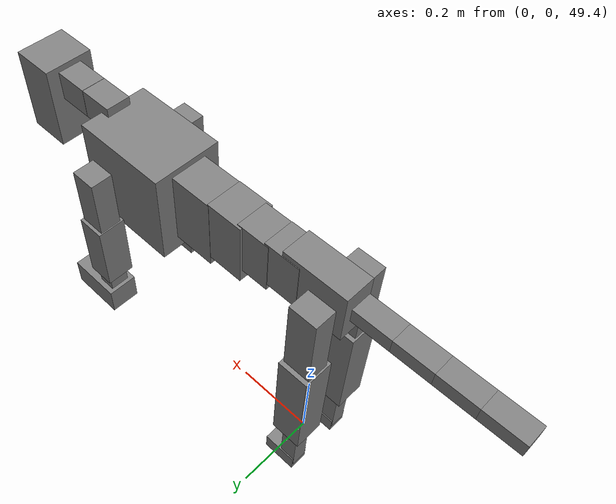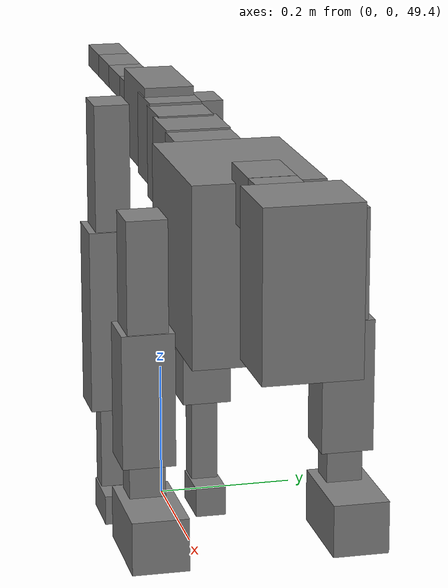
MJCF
<mujoco model="dog">

    <default>
        <joint armature="0.02" stiffness="1" damping="0.2" limited="true"/>
        <geom condim="3" friction="1 0.05 0.05" margin="0.01"/>
        <motor ctrllimited="true" ctrlrange="-1.0 1.0" forcelimited="true" gear="50"/>
    </default>

    <compiler inertiafromgeom="true" angle="radian"/>

    <option timestep="0.016" iterations="50" tolerance="1e-10" solver="Newton" jacobian="dense" cone="pyramidal"/>

    <size nconmax="20000" njmax="60000" nstack="5000000"/>
    <visual>
        <map force="0.1" zfar="30"/>
        <rgba haze="0.15 0.25 0.35 1"/>
        <quality shadowsize="2048"/>
        <global offwidth="800" offheight="800"/>
    </visual>

    <asset>
        <texture type="skybox" builtin="gradient" rgb1="0.3 0.5 0.7" rgb2="0 0 0" width="512" height="512"/>
        <texture name="texplane" type="2d" builtin="checker" rgb1=".2 .3 .4" rgb2=".1 0.15 0.2" width="512" height="512"
                 mark="cross" markrgb=".8 .8 .8"/>
        <texture name="texgeom" type="cube" builtin="flat" mark="cross" width="127" height="1278" rgb1="0.8 0.6 0.4"
                 rgb2="0.8 0.6 0.4" markrgb="1 1 1" random="0.01"/>

        <material name="matplane" reflectance="0.3" texture="texplane" texrepeat="1 1" texuniform="true"/>
        <material name="matgeom" texture="texgeom" texuniform="true" rgba="0.8 0.6 .4 1"/>
    </asset>

    <worldbody>
        <geom name="floor" pos="0 0 0" size="0 0 .25" type="plane" material="matplane" condim="3"/>

        <light directional="false" diffuse=".2 .2 .2" specular="0 0 0" pos="0 0 5" dir="0 0 -1" castshadow="false"/>
        <light mode="targetbodycom" target="torso" directional="false" diffuse=".8 .8 .8" specular="0.3 0.3 0.3"
               pos="0 0 4.0" dir="0 0 -1"/>

        <body name="root" pos="0 0 50">
            <freejoint name="root_1"/>
            <geom type="box" pos="0 0 -0.02" size="0.0774  0.0358  0.063" density="2030"/>

            <body name="spine1" pos="0.054 0 0">
                <joint name="spine1_y" axis="0 1 0" range="0 0.7" limited="true"/>
                <geom type="box" pos="0.02375 0 -0.03" size="0.04375  0.0375  0.05985" density="2030"/>

                <body name="spine2" pos="0.0612 0 0">
                    <joint name="spine2_y" axis="0 1 0" range="-0.15 0.15" limited="true"/>
                    <geom type="box" pos="0.03555  0  -0.04" size="0.04055  0.039  0.06615" density="2030"/>

                    <body name="spine3" pos="0.0730 0 0">
                        <joint name="spine3_y" axis="0 1 0" range="-0.15 0.15" limited="true"/>
                        <geom type="box" pos="0.03555  0  -0.057" size="0.04555  0.0445  0.081" density="2030"/>

                        <body name="spine4" pos="0.0780 0 0">
                            <joint name="spine4_y" axis="0 1 0" range="-0.15 0.15" limited="true"/>
                            <geom type="box" pos="0.05265  0  -0.07" size="0.05265  0.045  0.09135" density="2030"/>

                            <body name="torso" pos="0.1082 0 0">
                                <joint name="torso_y" axis="0 1 0" range="-0.15 0.15" limited="true"/>
                                <geom type="box" pos="0.11925  0  -0.085" size="0.11925  0.085  0.11745"
                                      density="2030"/>

                                <body name="neck1" pos="0.2160  0   0.0180">
                                    <joint name="neck1_y" axis="0 1 0" range="-1.2  -1" limited="true"/>
                                    <geom type="box" pos="0.0423  0  0" size="0.0423  0.03  0.036" density="2325"/>

                                    <body name="neck2" pos="0.0853  0  0">
                                        <joint name="neck2_y" axis="0 1 0" range="0.1  0" limited="true"/>
                                        <geom type="box" pos="0.0423  0  0" size="0.0423  0.03  0.036" density="2325"/>

                                        <body name="head" pos="0.0853  0  0">
                                            <joint name="head_y" axis="0 1 0" range="-0.3  -0.2" limited="true"/>
                                            <geom type="box" pos="0.0531  0  -0.055" size="0.0531  0.06  0.1044"
                                                  density="4030"/>

                                        </body>
                                    </body>
                                </body>

                                <body name="front_shoulder" pos="0.156  0   -0.0480">
                                    <joint name="front_shoulder_y" axis="0 1 0" range="-1 1.5" limited="true"/>
                                    <geom type="box" pos="0 0.13 -0.0600" size="0.0309  0.0264  0.0867" density="1158"/>
                                    <geom type="box" pos="0 -0.13 -0.0600" size="0.0309  0.0264  0.0867"
                                          density="1158"/>

                                    <body name="front_elbow" pos="0  0  -0.1200">
                                        <joint name="front_elbow_y" axis="0 1 0" range="-2 0" limited="true"/>
                                        <geom type="box" pos="0 0.13 -0.0881" size="0.0337  0.0344  0.0881"
                                              density="1081"/>
                                        <geom type="box" pos="0 -0.13 -0.0881" size="0.0337  0.0344  0.0881"
                                              density="1081"/>

                                        <body name="front_wrist" pos="0  0  -0.1763">
                                            <joint name="front_wrist_y" axis="0 1 0" range="-0.2 0" limited="true"/>
                                            <geom type="box" pos="0 0.13 -0.0297" size="0.0212  0.0236  0.0429"
                                                  density="1664"/>
                                            <geom type="box" pos="0 -0.13 -0.0297" size="0.0212  0.0236  0.0429"
                                                  density="1664"/>

                                            <body name="front_finger_end" pos="0  0  -0.0595">
                                                <joint name="front_finger_y" axis="0 1 0" range="-0.4 1"
                                                       limited="true"/>
                                                <geom type="box" pos="0.0367  0.13  -0.0200"
                                                      size="0.0673  0.0367  0.0350" density="1515"/>
                                                <geom type="box" pos="0.0367  -0.13  -0.0200"
                                                      size="0.0673  0.0367  0.0350" density="1515"/>

                                            </body>

                                        </body>
                                    </body>
                                </body>

                            </body>
                        </body>
                    </body>
                </body>
            </body>

            <body name="back_hip" pos="-0.03 0 -0.018">
                <joint name="back_hip_y" axis="0 1 0" range="-1.5 0.3" limited="true"/>
                <geom type="box" pos="0 0.07 -0.0912" size="0.0333  0.0261  0.1140" density="1154"/>
                <geom type="box" pos="0 -0.07 -0.0912" size="0.0333  0.0261  0.1140" density="1154"/>

                <body name="back_knee" pos="0  0  -0.1824">
                    <joint name="back_knee_y" axis="0 1 0" range="0 2.8" limited="true"/>
                    <geom type="box" pos="0 0.07 -0.1227" size="0.0372  0.0367  0.1383" density="1227"/>
                    <geom type="box" pos="0 -0.07 -0.1227" size="0.0372  0.0367  0.1383" density="1227"/>

                    <body name="back_ankle" pos="0  0  -0.2455">
                        <joint name="back_ankle_y" axis="0 1 0" range="-2.2 0" limited="true"/>
                        <geom type="box" pos="0 0.07 -0.0785" size="0.0202  0.0202  0.0897" density="1284"/>
                        <geom type="box" pos="0 -0.07 -0.0785" size="0.0202  0.0202  0.0897" density="1284"/>

                        <body name="back_toe_end" pos="0  0  -0.1570">
                            <joint name="back_toe_y" axis="0 1 0" range="-0.4 1" limited="true"/>
                            <geom type="box" pos="0.0230  0.07  -0.0073" size="0.0422  0.0230  0.0223" density="1515"/>
                            <geom type="box" pos="0.0230  -0.07  -0.0073" size="0.0422  0.0230  0.0223" density="1515"/>

                        </body>
                    </body>
                </body>
            </body>

            <body name="tail1" pos="-0.074 0 -0.006">
                <joint name="tail1_y" axis="0 1 0" range="-0.2 0.2" limited="true"/>
                <geom type="box" pos="-0.0536  0  0" size="0.045  0.025  0.0175" density="1587"/>

                <body name="tail2" pos="-0.09 0 0">
                    <joint name="tail2_y" axis="0 1 0" range="-0.2 0.2" limited="true"/>
                    <geom type="box" pos="-0.0536  0  0" size="0.045  0.025  0.0175" density="1587"/>

                    <body name="tail3" pos="-0.09 0 0">
                        <joint name="tail3_y" axis="0 1 0" range="-0.2 0.2" limited="true"/>
                        <geom type="box" pos="-0.0536  0  0" size="0.045  0.025  0.0175" density="1587"/>

                        <body name="tail4" pos="-0.09 0 0">
                            <joint name="tail4_y" axis="0 1 0" range="-0.2 0.2" limited="true"/>
                            <geom type="box" pos="-0.0536  0  0" size="0.045  0.025  0.0175" density="1587"/>

                        </body>
                    </body>
                </body>
            </body>
        </body>
    </worldbody>

    <actuator>
        <motor joint="spine1_y" forcerange="-150 150     "/>
        <motor joint="spine2_y" forcerange="-150 150     "/>
        <motor joint="spine3_y" forcerange="-150 150     "/>
        <motor joint="spine4_y" forcerange="-150 150     "/>
        <motor joint="torso_y" forcerange="-150 150     "/>
        <motor joint="neck1_y" forcerange="-100 100       "/>
        <motor joint="neck2_y" forcerange="-100 100       "/>
        <motor joint="head_y" forcerange="-150 150       "/>
        <motor joint="front_shoulder_y" forcerange="-121.79 154.38"/>
        <motor joint="front_elbow_y" forcerange="-164.51 185.99"/>
        <motor joint="front_wrist_y" forcerange="-76.82 111.96"/>
        <motor joint="front_finger_y" forcerange="-75.31 80.48"/>
        <motor joint="back_hip_y" forcerange="-268.52 279.97"/>
        <motor joint="back_knee_y" forcerange="-382.22 350.92"/>
        <motor joint="back_angle_y" forcerange="-82.63 141.23"/>
        <motor joint="back_toe_y" forcerange="-32.86 71.35"/>
        <motor joint="tail1_y" forcerange="-50 50     "/>
        <motor joint="tail2_y" forcerange="-50 50     "/>
        <motor joint="tail3_y" forcerange="-50 50     "/>
        <motor joint="tail4_y" forcerange="-50 50     "/>
    </actuator>
</mujoco>
